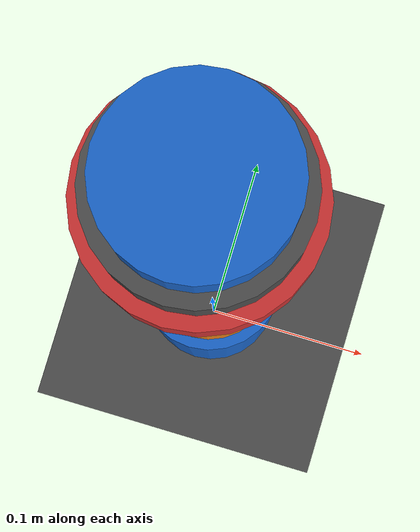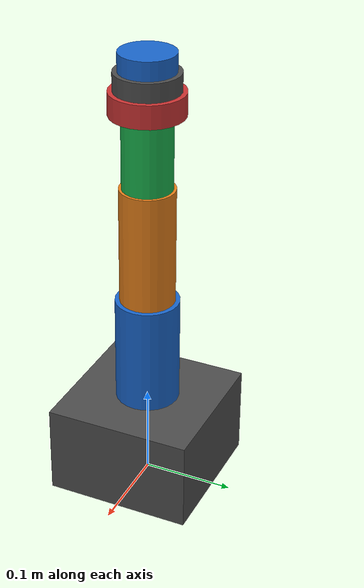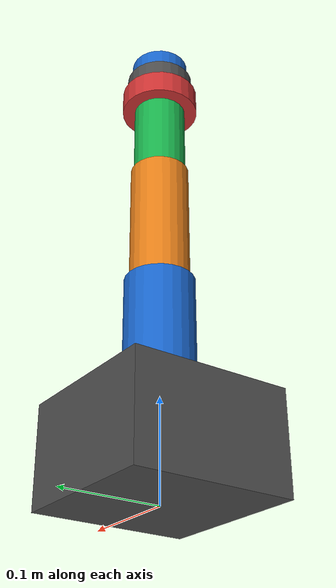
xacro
<?xml version="1.0"?>
<robot xmlns:xacro="http://www.ros.org/wiki/xacro" name="arm">

    <!-- Хардварные интерфейсы для Gazebo включаются только при use_gazebo:=true.
         Иначе (MoveIt/mock) интерфейсы объявляет arm.ros2_control.xacro — дублировать нельзя. -->
    <xacro:arg name="use_gazebo" default="false"/>

    <!-- Компактный прототип с нейтральной высотой TCP около 0.50 м. -->
    <xacro:property name="base_width" value="0.16"/>
    <xacro:property name="base_height" value="0.10"/>
    <xacro:property name="upper_arm_length" value="0.12"/>
    <xacro:property name="forearm_length" value="0.13"/>
    <xacro:property name="wrist_mount_length" value="0.08"/>
    <xacro:property name="wrist_roll_length" value="0.025"/>
    <xacro:property name="wrist_pitch_length" value="0.02"/>
    <xacro:property name="tool_flange_length" value="0.02"/>
    <xacro:property name="tcp_offset" value="0.025"/>

    <!-- Проектный mass budget модели равен 4.15 кг с учетом основания. -->
    <xacro:property name="base_mass" value="1.2"/>
    <xacro:property name="upper_arm_mass" value="0.9"/>
    <xacro:property name="forearm_mass" value="0.8"/>
    <xacro:property name="wrist_mount_mass" value="0.45"/>
    <xacro:property name="wrist_roll_mass" value="0.35"/>
    <xacro:property name="wrist_pitch_mass" value="0.25"/>
    <xacro:property name="tool_flange_mass" value="0.2"/>

    <!-- Цвета для RViz -->
    <material name="gray"><color rgba="0.3 0.3 0.3 1.0"/></material>
    <material name="blue"><color rgba="0.1 0.4 0.8 1.0"/></material>
    <material name="orange"><color rgba="0.9 0.5 0.1 1.0"/></material>
    <material name="green"><color rgba="0.1 0.7 0.3 1.0"/></material>
    <material name="red"><color rgba="0.8 0.2 0.2 1.0"/></material>

    <!-- МИР -->
    <link name="world"/>

    <joint name="world_joint" type="fixed">
        <parent link="world"/>
        <child link="base_link"/>
        <origin xyz="0 0 0" rpy="0 0 0"/>
    </joint>

    <!-- BASE LINK -->
    <link name="base_link">
        <visual>
            <origin xyz="0 0 ${base_height / 2}" rpy="0 0 0"/>
            <geometry><box size="${base_width} ${base_width} ${base_height}"/></geometry>
            <material name="gray"/>
        </visual>
        <collision>
            <origin xyz="0 0 ${base_height / 2}" rpy="0 0 0"/>
            <geometry><box size="${base_width} ${base_width} ${base_height}"/></geometry>
        </collision>
        <inertial>
            <origin xyz="0 0 ${base_height / 2}" rpy="0 0 0"/>
            <mass value="${base_mass}"/>
            <inertia
                ixx="${base_mass * (base_width ** 2 + base_height ** 2) / 12}"
                ixy="0.0" ixz="0.0"
                iyy="${base_mass * (base_width ** 2 + base_height ** 2) / 12}"
                iyz="0.0"
                izz="${base_mass * (2 * base_width ** 2) / 12}"/>
        </inertial>
    </link>

    <gazebo reference="base_link">
        <material>Gazebo/Grey</material>
    </gazebo>

    <!-- JOINT 1, вращение основания вокруг Z -->
    <joint name="joint_1" type="revolute">
        <parent link="base_link"/>
        <child link="link_1"/>
        <origin xyz="0 0 ${base_height}" rpy="0 0 0"/>
        <axis xyz="0 0 1"/>
        <limit lower="-3.14159" upper="3.14159" effort="150.0" velocity="2.0"/>
        <dynamics damping="0.5" friction="0.1"/>
    </joint>

    <!-- LINK 1, верхнее плечо -->
    <link name="link_1">
        <visual>
            <origin xyz="0 0 ${upper_arm_length / 2}" rpy="0 0 0"/>
            <geometry><cylinder length="${upper_arm_length}" radius="0.035"/></geometry>
            <material name="blue"/>
        </visual>
        <collision>
            <origin xyz="0 0 ${upper_arm_length / 2}" rpy="0 0 0"/>
            <geometry><cylinder length="${upper_arm_length}" radius="0.035"/></geometry>
        </collision>
        <inertial>
            <origin xyz="0 0 ${upper_arm_length / 2}" rpy="0 0 0"/>
            <mass value="${upper_arm_mass}"/>
            <inertia
                ixx="${upper_arm_mass * (3 * 0.035 ** 2 + upper_arm_length ** 2) / 12}"
                ixy="0.0" ixz="0.0"
                iyy="${upper_arm_mass * (3 * 0.035 ** 2 + upper_arm_length ** 2) / 12}"
                iyz="0.0"
                izz="${upper_arm_mass * 0.035 ** 2 / 2}"/>
        </inertial>
    </link>

    <gazebo reference="link_1">
        <material>Gazebo/Blue</material>
    </gazebo>

    <!-- JOINT 2, наклон плеча вокруг Y -->
    <joint name="joint_2" type="revolute">
        <parent link="link_1"/>
        <child link="link_2"/>
        <origin xyz="0 0 ${upper_arm_length}" rpy="0 0 0"/>
        <axis xyz="0 1 0"/>
        <limit lower="-2.0944" upper="2.0944" effort="150.0" velocity="2.0"/>
        <dynamics damping="0.5" friction="0.1"/>
    </joint>

    <!-- LINK 2, предплечье -->
    <link name="link_2">
        <visual>
            <origin xyz="0 0 ${forearm_length / 2}" rpy="0 0 0"/>
            <geometry><cylinder length="${forearm_length}" radius="0.03"/></geometry>
            <material name="orange"/>
        </visual>
        <collision>
            <origin xyz="0 0 ${forearm_length / 2}" rpy="0 0 0"/>
            <geometry><cylinder length="${forearm_length}" radius="0.03"/></geometry>
        </collision>
        <inertial>
            <origin xyz="0 0 ${forearm_length / 2}" rpy="0 0 0"/>
            <mass value="${forearm_mass}"/>
            <inertia
                ixx="${forearm_mass * (3 * 0.03 ** 2 + forearm_length ** 2) / 12}"
                ixy="0.0" ixz="0.0"
                iyy="${forearm_mass * (3 * 0.03 ** 2 + forearm_length ** 2) / 12}"
                iyz="0.0"
                izz="${forearm_mass * 0.03 ** 2 / 2}"/>
        </inertial>
    </link>

    <gazebo reference="link_2">
        <material>Gazebo/Orange</material>
    </gazebo>

    <!-- JOINT 3, наклон локтя вокруг Y -->
    <joint name="joint_3" type="revolute">
        <parent link="link_2"/>
        <child link="link_3"/>
        <origin xyz="0 0 ${forearm_length}" rpy="0 0 0"/>
        <axis xyz="0 1 0"/>
        <limit lower="-2.6180" upper="2.6180" effort="100.0" velocity="2.5"/>
        <dynamics damping="0.5" friction="0.1"/>
    </joint>

    <!-- LINK 3, основание запястья -->
    <link name="link_3">
        <visual>
            <origin xyz="0 0 ${wrist_mount_length / 2}" rpy="0 0 0"/>
            <geometry><cylinder length="${wrist_mount_length}" radius="0.027"/></geometry>
            <material name="green"/>
        </visual>
        <collision>
            <origin xyz="0 0 ${wrist_mount_length / 2}" rpy="0 0 0"/>
            <geometry><cylinder length="${wrist_mount_length}" radius="0.027"/></geometry>
        </collision>
        <inertial>
            <origin xyz="0 0 ${wrist_mount_length / 2}" rpy="0 0 0"/>
            <mass value="${wrist_mount_mass}"/>
            <inertia
                ixx="${wrist_mount_mass * (3 * 0.027 ** 2 + wrist_mount_length ** 2) / 12}"
                ixy="0.0" ixz="0.0"
                iyy="${wrist_mount_mass * (3 * 0.027 ** 2 + wrist_mount_length ** 2) / 12}"
                iyz="0.0"
                izz="${wrist_mount_mass * 0.027 ** 2 / 2}"/>
        </inertial>
    </link>

    <gazebo reference="link_3">
        <material>Gazebo/Green</material>
    </gazebo>

    <!-- JOINT 4, вращение запястья вокруг Z -->
    <joint name="joint_4" type="revolute">
        <parent link="link_3"/>
        <child link="link_4"/>
        <origin xyz="0 0 ${wrist_mount_length}" rpy="0 0 0"/>
        <axis xyz="0 0 1"/>
        <limit lower="-3.14159" upper="3.14159" effort="50.0" velocity="3.0"/>
        <dynamics damping="0.3" friction="0.05"/>
    </joint>

    <!-- LINK 4, корпус запястья -->
    <link name="link_4">
        <visual>
            <origin xyz="0 0 ${wrist_roll_length / 2}" rpy="0 0 0"/>
            <geometry><cylinder length="${wrist_roll_length}" radius="0.04"/></geometry>
            <material name="red"/>
        </visual>
        <collision>
            <origin xyz="0 0 ${wrist_roll_length / 2}" rpy="0 0 0"/>
            <geometry><cylinder length="${wrist_roll_length}" radius="0.04"/></geometry>
        </collision>
        <inertial>
            <origin xyz="0 0 ${wrist_roll_length / 2}" rpy="0 0 0"/>
            <mass value="${wrist_roll_mass}"/>
            <inertia
                ixx="${wrist_roll_mass * (3 * 0.04 ** 2 + wrist_roll_length ** 2) / 12}"
                ixy="0.0" ixz="0.0"
                iyy="${wrist_roll_mass * (3 * 0.04 ** 2 + wrist_roll_length ** 2) / 12}"
                iyz="0.0"
                izz="${wrist_roll_mass * 0.04 ** 2 / 2}"/>
        </inertial>
    </link>

    <gazebo reference="link_4">
        <material>Gazebo/Red</material>
    </gazebo>

    <!-- JOINT 5, наклон запястья вокруг Y -->
    <joint name="joint_5" type="revolute">
        <parent link="link_4"/>
        <child link="link_5"/>
        <origin xyz="0 0 ${wrist_roll_length}" rpy="0 0 0"/>
        <axis xyz="0 1 0"/>
        <limit lower="-2.0944" upper="2.0944" effort="50.0" velocity="3.0"/>
        <dynamics damping="0.3" friction="0.05"/>
    </joint>

    <!-- LINK 5, опора фланца -->
    <link name="link_5">
        <visual>
            <origin xyz="0 0 ${wrist_pitch_length / 2}" rpy="0 0 0"/>
            <geometry><cylinder length="${wrist_pitch_length}" radius="0.035"/></geometry>
            <material name="gray"/>
        </visual>
        <collision>
            <origin xyz="0 0 ${wrist_pitch_length / 2}" rpy="0 0 0"/>
            <geometry><cylinder length="${wrist_pitch_length}" radius="0.035"/></geometry>
        </collision>
        <inertial>
            <origin xyz="0 0 ${wrist_pitch_length / 2}" rpy="0 0 0"/>
            <mass value="${wrist_pitch_mass}"/>
            <inertia
                ixx="${wrist_pitch_mass * (3 * 0.035 ** 2 + wrist_pitch_length ** 2) / 12}"
                ixy="0.0" ixz="0.0"
                iyy="${wrist_pitch_mass * (3 * 0.035 ** 2 + wrist_pitch_length ** 2) / 12}"
                iyz="0.0"
                izz="${wrist_pitch_mass * 0.035 ** 2 / 2}"/>
        </inertial>
    </link>

    <gazebo reference="link_5">
        <material>Gazebo/Grey</material>
    </gazebo>

    <!-- JOINT 6, вращение фланца вокруг Z -->
    <joint name="joint_6" type="revolute">
        <parent link="link_5"/>
        <child link="link_6"/>
        <origin xyz="0 0 ${wrist_pitch_length}" rpy="0 0 0"/>
        <axis xyz="0 0 1"/>
        <limit lower="-3.14159" upper="3.14159" effort="30.0" velocity="3.0"/>
        <dynamics damping="0.3" friction="0.05"/>
    </joint>

    <!-- LINK 6, фланец инструмента -->
    <link name="link_6">
        <visual>
            <origin xyz="0 0 ${tool_flange_length / 2}" rpy="0 0 0"/>
            <geometry><cylinder length="${tool_flange_length}" radius="0.03"/></geometry>
            <material name="blue"/>
        </visual>
        <collision>
            <origin xyz="0 0 ${tool_flange_length / 2}" rpy="0 0 0"/>
            <geometry><cylinder length="${tool_flange_length}" radius="0.03"/></geometry>
        </collision>
        <inertial>
            <origin xyz="0 0 ${tool_flange_length / 2}" rpy="0 0 0"/>
            <mass value="${tool_flange_mass}"/>
            <inertia
                ixx="${tool_flange_mass * (3 * 0.03 ** 2 + tool_flange_length ** 2) / 12}"
                ixy="0.0" ixz="0.0"
                iyy="${tool_flange_mass * (3 * 0.03 ** 2 + tool_flange_length ** 2) / 12}"
                iyz="0.0"
                izz="${tool_flange_mass * 0.03 ** 2 / 2}"/>
        </inertial>
    </link>

    <gazebo reference="link_6">
        <material>Gazebo/Blue</material>
    </gazebo>

    <!-- ПЛАГИН GAZEBO ROS2 CONTROL -->
    <gazebo>
        <plugin filename="libgazebo_ros2_control.so" name="gazebo_ros2_control">
            <robot_param>robot_description</robot_param>
            <robot_param_node>robot_state_publisher</robot_param_node>
            <parameters>$(find arm_description)/config/ros2_controllers.yaml</parameters>
        </plugin>
    </gazebo>

    <!-- ИНТЕРФЕЙСЫ GAZEBO ROS2 CONTROL (включаются аргументом use_gazebo:=true) -->
    <xacro:if value="$(arg use_gazebo)">
        <ros2_control name="GazeboSystem" type="system">
            <hardware>
                <plugin>gazebo_ros2_control/GazeboSystem</plugin>
            </hardware>
            <joint name="joint_1">
                <command_interface name="position"/>
                <state_interface name="position"/>
                <state_interface name="velocity"/>
            </joint>
            <joint name="joint_2">
                <command_interface name="position"/>
                <state_interface name="position"/>
                <state_interface name="velocity"/>
            </joint>
            <joint name="joint_3">
                <command_interface name="position"/>
                <state_interface name="position"/>
                <state_interface name="velocity"/>
            </joint>
            <joint name="joint_4">
                <command_interface name="position"/>
                <state_interface name="position"/>
                <state_interface name="velocity"/>
            </joint>
            <joint name="joint_5">
                <command_interface name="position"/>
                <state_interface name="position"/>
                <state_interface name="velocity"/>
            </joint>
            <joint name="joint_6">
                <command_interface name="position"/>
                <state_interface name="position"/>
                <state_interface name="velocity"/>
            </joint>
        </ros2_control>
    </xacro:if>

    <!-- TOOL CENTER POINT (TCP) -->
    <link name="tcp"/>

    <joint name="joint_tcp" type="fixed">
        <parent link="link_6"/>
        <child link="tcp"/>
        <origin xyz="0 0 ${tcp_offset}" rpy="0 0 0"/>
    </joint>

</robot>
